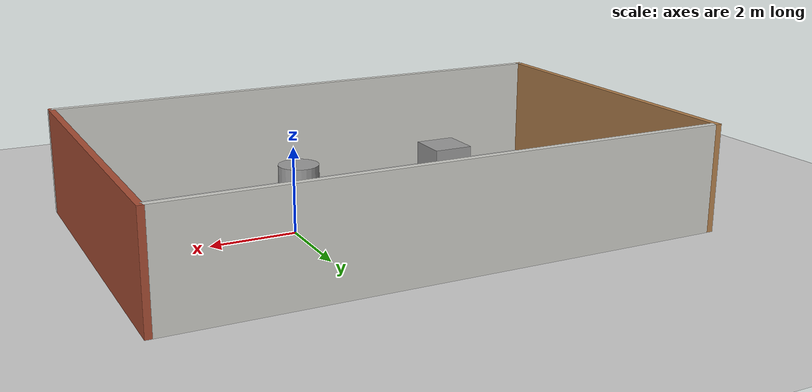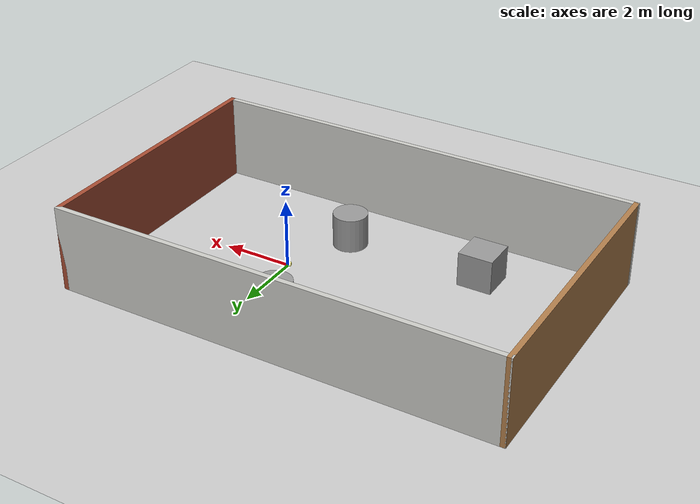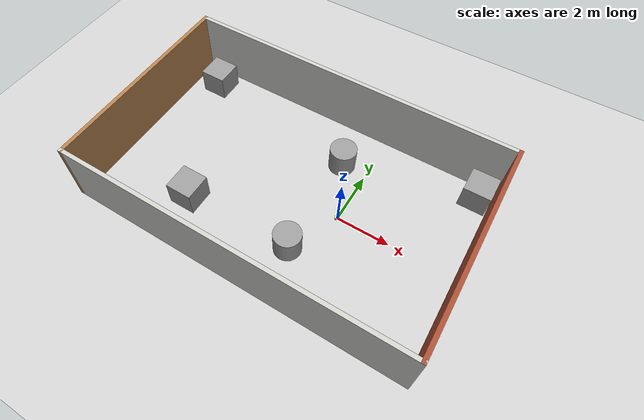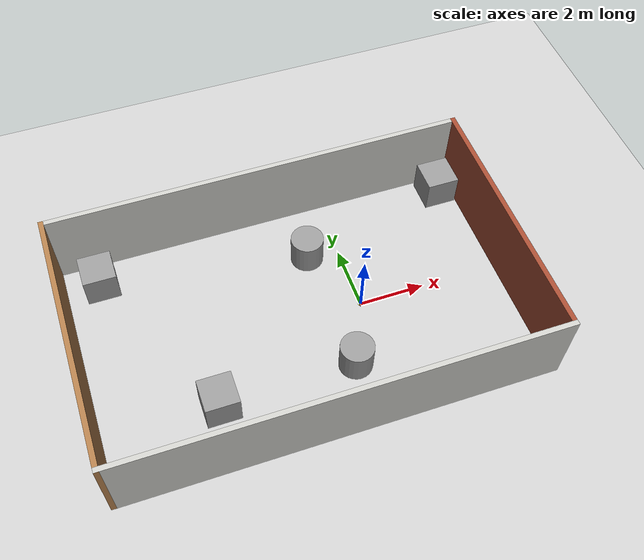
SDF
<sdf version="1.6">
 <world name="default">
  <light name="sun" type="directional">
   <pose>0 0 10 0 -0 0</pose>
   <diffuse>0.8 0.8 0.8 1</diffuse>
   <specular>0.2 0.2 0.2 1</specular>
   <attenuation>
    <range>1000</range>
    <constant>0.9</constant>
    <linear>0.01</linear>
    <quadratic>0.001</quadratic>
   </attenuation>
   <direction>-0.5 0.1 -0.9</direction>
   <spot><inner_angle>0</inner_angle><outer_angle>0</outer_angle><falloff>0</falloff></spot>
  </light>
  <model name="ground_plane">
   <static>1</static>
   <link name="link">
    <collision name="collision">
     <geometry><plane><normal>0 0 1</normal><size>100 100</size></plane></geometry>
     <surface>
      <contact><collide_bitmask>65535</collide_bitmask></contact>
      <friction><ode><mu>100</mu><mu2>50</mu2></ode></friction>
     </surface>
    </collision>
    <visual name="visual">
     <cast_shadows>0</cast_shadows>
     <geometry><plane><normal>0 0 1</normal><size>100 100</size></plane></geometry>
     <material>
      <script><uri>file://media/materials/scripts/gazebo.material</uri><name>Gazebo/Grey</name></script>
     </material>
    </visual>
   </link>
  </model>
  <gravity>0 0 -9.8</gravity>
  <magnetic_field>6e-06 2.3e-05 -4.2e-05</magnetic_field>
  <atmosphere type="adiabatic"/>
  <physics name="default_physics" default="0" type="ode">
   <max_step_size>0.001</max_step_size>
   <real_time_factor>1</real_time_factor>
   <real_time_update_rate>1000</real_time_update_rate>
  </physics>
  <scene><ambient>0.4 0.4 0.4 1</ambient><background>0.7 0.7 0.7 1</background><shadows>1</shadows></scene>
  <spherical_coordinates>
   <surface_model>EARTH_WGS84</surface_model>
   <latitude_deg>0</latitude_deg>
   <longitude_deg>0</longitude_deg>
   <elevation>0</elevation>
   <heading_deg>0</heading_deg>
  </spherical_coordinates>
  <model name="box_house">
   <pose>-1.97643 0.05996 0 0 -0 0</pose>
   <link name="Wall_1">
    <collision name="Wall_1_Collision">
     <geometry><box><size>13 0.15 2.5</size></box></geometry>
     <pose>0 0 1.25 0 -0 0</pose>
    </collision>
    <visual name="Wall_1_Visual">
     <pose>0 0 1.25 0 -0 0</pose>
     <geometry><box><size>13 0.15 2.5</size></box></geometry>
     <material>
      <script><uri>file://media/materials/scripts/gazebo.material</uri><name>Gazebo/CeilingTiled</name></script>
      <ambient>1 1 1 1</ambient>
     </material>
     <meta><layer>0</layer></meta>
    </visual>
    <pose>0 3.925 0 0 -0 0</pose>
   </link>
   <link name="Wall_2">
    <collision name="Wall_2_Collision">
     <geometry><box><size>8 0.15 2.5</size></box></geometry>
     <pose>0 0 1.25 0 -0 0</pose>
    </collision>
    <visual name="Wall_2_Visual">
     <pose>0 0 1.25 0 -0 0</pose>
     <geometry><box><size>8 0.15 2.5</size></box></geometry>
     <material>
      <script><uri>file://media/materials/scripts/gazebo.material</uri><name>Gazebo/Bricks</name></script>
      <ambient>1 1 1 1</ambient>
     </material>
     <meta><layer>0</layer></meta>
    </visual>
    <pose>6.425 -0 0 0 -0 -1.5708</pose>
   </link>
   <link name="Wall_3">
    <collision name="Wall_3_Collision">
     <geometry><box><size>13 0.15 2.5</size></box></geometry>
     <pose>0 0 1.25 0 -0 0</pose>
    </collision>
    <visual name="Wall_3_Visual">
     <pose>0 0 1.25 0 -0 0</pose>
     <geometry><box><size>13 0.15 2.5</size></box></geometry>
     <material>
      <script><uri>file://media/materials/scripts/gazebo.material</uri><name>Gazebo/CeilingTiled</name></script>
      <ambient>1 1 1 1</ambient>
     </material>
     <meta><layer>0</layer></meta>
    </visual>
    <pose>0 -3.925 0 0 -0 3.14159</pose>
   </link>
   <link name="Wall_4">
    <collision name="Wall_4_Collision">
     <geometry><box><size>8 0.15 2.5</size></box></geometry>
     <pose>0 0 1.25 0 -0 0</pose>
    </collision>
    <visual name="Wall_4_Visual">
     <pose>0 0 1.25 0 -0 0</pose>
     <geometry><box><size>8 0.15 2.5</size></box></geometry>
     <material>
      <script><uri>file://media/materials/scripts/gazebo.material</uri><name>Gazebo/Wood</name></script>
      <ambient>1 1 1 1</ambient>
     </material>
     <meta><layer>0</layer></meta>
    </visual>
    <pose>-6.425 -0 0 0 -0 1.5708</pose>
   </link>
   <static>1</static>
  </model>
  <model name="unit_box">
   <pose>-7.27142 3.09748 0.499995 0 1e-05 0</pose>
   <link name="link">
    <inertial>
     <mass>1</mass>
     <inertia>
      <ixx>0.166667</ixx>
      <ixy>0</ixy>
      <ixz>0</ixz>
      <iyy>0.166667</iyy>
      <iyz>0</iyz>
      <izz>0.166667</izz>
     </inertia>
    </inertial>
    <collision name="collision"><geometry><box><size>1 1 1</size></box></geometry></collision>
    <visual name="visual">
     <geometry><box><size>1 1 1</size></box></geometry>
     <material>
      <script><name>Gazebo/Grey</name><uri>file://media/materials/scripts/gazebo.material</uri></script>
     </material>
    </visual>
   </link>
  </model>
  <model name="unit_box_0">
   <pose>-4.96407 -2.00354 0.499995 1e-05 -0 0</pose>
   <link name="link">
    <inertial>
     <mass>1</mass>
     <inertia>
      <ixx>0.166667</ixx>
      <ixy>0</ixy>
      <ixz>0</ixz>
      <iyy>0.166667</iyy>
      <iyz>0</iyz>
      <izz>0.166667</izz>
     </inertia>
    </inertial>
    <collision name="collision"><geometry><box><size>1 1 1</size></box></geometry></collision>
    <visual name="visual">
     <geometry><box><size>1 1 1</size></box></geometry>
     <material>
      <script><name>Gazebo/Grey</name><uri>file://media/materials/scripts/gazebo.material</uri></script>
     </material>
    </visual>
   </link>
  </model>
  <model name="unit_box_1">
   <pose>3.83312 3.3034 0.499995 0 1e-05 0</pose>
   <link name="link">
    <inertial>
     <mass>1</mass>
     <inertia>
      <ixx>0.166667</ixx>
      <ixy>0</ixy>
      <ixz>0</ixz>
      <iyy>0.166667</iyy>
      <iyz>0</iyz>
      <izz>0.166667</izz>
     </inertia>
    </inertial>
    <collision name="collision"><geometry><box><size>1 1 1</size></box></geometry></collision>
    <visual name="visual">
     <geometry><box><size>1 1 1</size></box></geometry>
     <material>
      <script><name>Gazebo/Grey</name><uri>file://media/materials/scripts/gazebo.material</uri></script>
     </material>
    </visual>
   </link>
  </model>
  <model name="unit_cylinder_0">
   <pose>-0.988142 2.12658 0.499992 -3e-06 4e-06 0</pose>
   <link name="link">
    <inertial>
     <mass>1</mass>
     <inertia><ixx>0.145833</ixx><ixy>0</ixy><ixz>0</ixz><iyy>0.145833</iyy><iyz>0</iyz><izz>0.125</izz></inertia>
    </inertial>
    <collision name="collision">
     <geometry><cylinder><radius>0.5</radius><length>1</length></cylinder></geometry>
    </collision>
    <visual name="visual">
     <geometry><cylinder><radius>0.5</radius><length>1</length></cylinder></geometry>
     <material>
      <script><name>Gazebo/Grey</name><uri>file://media/materials/scripts/gazebo.material</uri></script>
     </material>
    </visual>
   </link>
  </model>
  <model name="unit_cylinder_1">
   <pose>-0.89058 -1.90634 0.499998 3e-06 -4e-06 0</pose>
   <link name="link">
    <inertial>
     <mass>1</mass>
     <inertia><ixx>0.145833</ixx><ixy>0</ixy><ixz>0</ixz><iyy>0.145833</iyy><iyz>0</iyz><izz>0.125</izz></inertia>
    </inertial>
    <collision name="collision">
     <geometry><cylinder><radius>0.5</radius><length>1</length></cylinder></geometry>
    </collision>
    <visual name="visual">
     <geometry><cylinder><radius>0.5</radius><length>1</length></cylinder></geometry>
     <material>
      <script><name>Gazebo/Grey</name><uri>file://media/materials/scripts/gazebo.material</uri></script>
     </material>
    </visual>
   </link>
  </model>
  <audio><device>default</device></audio>
  <model name="mycar">
   <link name="base_footprint">
    <inertial>
     <pose>0.012698 0 0.070397 0 -0 0</pose>
     <mass>0.63</mass>
     <inertia>
      <ixx>0.00241807</ixx>
      <ixy>0</ixy>
      <ixz>-0.000296825</ixz>
      <iyy>0.00295648</iyy>
      <iyz>0</iyz>
      <izz>0.00305433</izz>
     </inertia>
    </inertial>
    <collision name="base_footprint_fixed_joint_lump__base_link_collision">
     <pose>0 0 0.055 0 -0 0</pose>
     <geometry><cylinder><length>0.08</length><radius>0.1</radius></cylinder></geometry>
    </collision>
    <collision name="base_footprint_fixed_joint_lump__camera_collision_1">
     <pose>0.08 0 0.1075 0 -0 0</pose>
     <geometry><box><size>0.01 0.025 0.025</size></box></geometry>
    </collision>
    <collision name="base_footprint_fixed_joint_lump__support_collision_2">
     <pose>0 0 0.17 0 -0 0</pose>
     <geometry><cylinder><length>0.15</length><radius>0.01</radius></cylinder></geometry>
    </collision>
    <collision name="base_footprint_fixed_joint_lump__laser_collision_3">
     <pose>0 0 0.27 0 -0 0</pose>
     <geometry><cylinder><length>0.05</length><radius>0.03</radius></cylinder></geometry>
    </collision>
    <visual name="base_footprint_visual"><geometry><sphere><radius>0.001</radius></sphere></geometry></visual>
    <visual name="base_footprint_fixed_joint_lump__base_link_visual_1">
     <pose>0 0 0.055 0 -0 0</pose>
     <geometry><cylinder><length>0.08</length><radius>0.1</radius></cylinder></geometry>
     <material>
      <script><name>Gazebo/Yellow</name><uri>file://media/materials/scripts/gazebo.material</uri></script>
     </material>
    </visual>
    <visual name="base_footprint_fixed_joint_lump__camera_visual_2">
     <pose>0.08 0 0.1075 0 -0 0</pose>
     <geometry><box><size>0.01 0.025 0.025</size></box></geometry>
     <material>
      <script><name>Gazebo/Green</name><uri>file://media/materials/scripts/gazebo.material</uri></script>
     </material>
    </visual>
    <visual name="base_footprint_fixed_joint_lump__support_visual_3">
     <pose>0 0 0.17 0 -0 0</pose>
     <geometry><cylinder><length>0.15</length><radius>0.01</radius></cylinder></geometry>
     <material>
      <script><name>Gazebo/White</name><uri>file://media/materials/scripts/gazebo.material</uri></script>
     </material>
    </visual>
    <visual name="base_footprint_fixed_joint_lump__laser_visual_4">
     <pose>0 0 0.27 0 -0 0</pose>
     <geometry><cylinder><length>0.05</length><radius>0.03</radius></cylinder></geometry>
     <material>
      <script><name>Gazebo/Blue</name><uri>file://media/materials/scripts/gazebo.material</uri></script>
     </material>
    </visual>
   </link>
   <link name="back_wheel">
    <pose>-0.0925 0 0.0075 0 -0 0</pose>
    <inertial>
     <mass>0.03</mass>
     <inertia>
      <ixx>6.75e-07</ixx>
      <ixy>0</ixy>
      <ixz>0</ixz>
      <iyy>6.75e-07</iyy>
      <iyz>0</iyz>
      <izz>6.75e-07</izz>
     </inertia>
    </inertial>
    <collision name="back_wheel_collision">
     <geometry><sphere><radius>0.0075</radius></sphere></geometry>
    </collision>
    <visual name="back_wheel_visual">
     <geometry><sphere><radius>0.0075</radius></sphere></geometry>
     <material>
      <script><name>Gazebo/Red</name><uri>file://media/materials/scripts/gazebo.material</uri></script>
     </material>
    </visual>
   </link>
   <joint name="back_wheel2base_link" type="revolute">
    <child>back_wheel</child>
    <parent>base_footprint</parent>
    <axis>
     <xyz>1 1 1</xyz>
     <limit><lower>-1e+16</lower><upper>1e+16</upper></limit>
     <dynamics><spring_reference>0</spring_reference><spring_stiffness>0</spring_stiffness></dynamics>
     <use_parent_model_frame>1</use_parent_model_frame>
    </axis>
   </joint>
   <link name="front_wheel">
    <pose>0.0925 0 0.0075 0 -0 0</pose>
    <inertial>
     <mass>0.03</mass>
     <inertia>
      <ixx>6.75e-07</ixx>
      <ixy>0</ixy>
      <ixz>0</ixz>
      <iyy>6.75e-07</iyy>
      <iyz>0</iyz>
      <izz>6.75e-07</izz>
     </inertia>
    </inertial>
    <collision name="front_wheel_collision">
     <geometry><sphere><radius>0.0075</radius></sphere></geometry>
    </collision>
    <visual name="front_wheel_visual">
     <geometry><sphere><radius>0.0075</radius></sphere></geometry>
     <material>
      <script><name>Gazebo/Red</name><uri>file://media/materials/scripts/gazebo.material</uri></script>
     </material>
    </visual>
   </link>
   <joint name="front_wheel2base_link" type="revolute">
    <child>front_wheel</child>
    <parent>base_footprint</parent>
    <axis>
     <xyz>1 1 1</xyz>
     <limit><lower>-1e+16</lower><upper>1e+16</upper></limit>
     <dynamics><spring_reference>0</spring_reference><spring_stiffness>0</spring_stiffness></dynamics>
     <use_parent_model_frame>1</use_parent_model_frame>
    </axis>
   </joint>
   <link name="left_wheel">
    <pose>0 0.1 0.0325 0 -0 0</pose>
    <inertial>
     <mass>0.05</mass>
     <inertia>
      <ixx>1.41406e-05</ixx>
      <ixy>0</ixy>
      <ixz>0</ixz>
      <iyy>1.41406e-05</iyy>
      <iyz>0</iyz>
      <izz>2.64063e-05</izz>
     </inertia>
    </inertial>
    <collision name="left_wheel_collision">
     <pose>0 0 0 1.5708 -0 0</pose>
     <geometry><cylinder><length>0.015</length><radius>0.0325</radius></cylinder></geometry>
    </collision>
    <visual name="left_wheel_visual">
     <pose>0 0 0 1.5708 -0 0</pose>
     <geometry><cylinder><length>0.015</length><radius>0.0325</radius></cylinder></geometry>
     <material>
      <script><name>Gazebo/Red</name><uri>file://media/materials/scripts/gazebo.material</uri></script>
     </material>
    </visual>
   </link>
   <joint name="left_wheel2base_link" type="revolute">
    <child>left_wheel</child>
    <parent>base_footprint</parent>
    <axis>
     <xyz>0 1 0</xyz>
     <limit><lower>-1e+16</lower><upper>1e+16</upper></limit>
     <dynamics><spring_reference>0</spring_reference><spring_stiffness>0</spring_stiffness></dynamics>
     <use_parent_model_frame>1</use_parent_model_frame>
    </axis>
   </joint>
   <link name="right_wheel">
    <pose>0 -0.1 0.0325 0 -0 0</pose>
    <inertial>
     <mass>0.05</mass>
     <inertia>
      <ixx>1.41406e-05</ixx>
      <ixy>0</ixy>
      <ixz>0</ixz>
      <iyy>1.41406e-05</iyy>
      <iyz>0</iyz>
      <izz>2.64063e-05</izz>
     </inertia>
    </inertial>
    <collision name="right_wheel_collision">
     <pose>0 0 0 1.5708 -0 0</pose>
     <geometry><cylinder><length>0.015</length><radius>0.0325</radius></cylinder></geometry>
    </collision>
    <visual name="right_wheel_visual">
     <pose>0 0 0 1.5708 -0 0</pose>
     <geometry><cylinder><length>0.015</length><radius>0.0325</radius></cylinder></geometry>
     <material>
      <script><name>Gazebo/Red</name><uri>file://media/materials/scripts/gazebo.material</uri></script>
     </material>
    </visual>
   </link>
   <joint name="right_wheel2base_link" type="revolute">
    <child>right_wheel</child>
    <parent>base_footprint</parent>
    <axis>
     <xyz>0 1 0</xyz>
     <limit><lower>-1e+16</lower><upper>1e+16</upper></limit>
     <dynamics><spring_reference>0</spring_reference><spring_stiffness>0</spring_stiffness></dynamics>
     <use_parent_model_frame>1</use_parent_model_frame>
    </axis>
   </joint>
   <pose>-0.002242 0.007084 0 0 0 -0.43308</pose>
  </model>
 </world>
</sdf>
